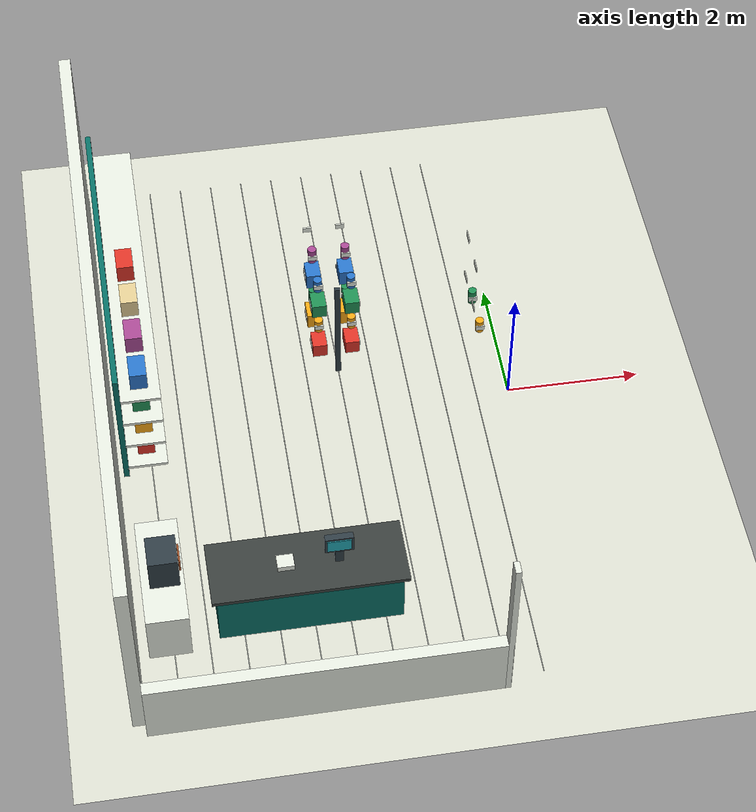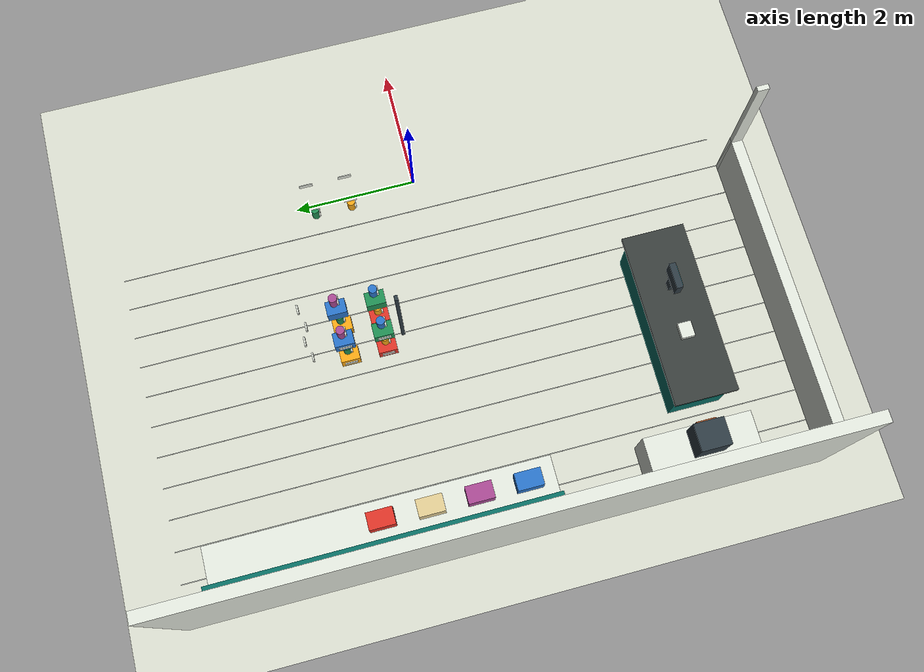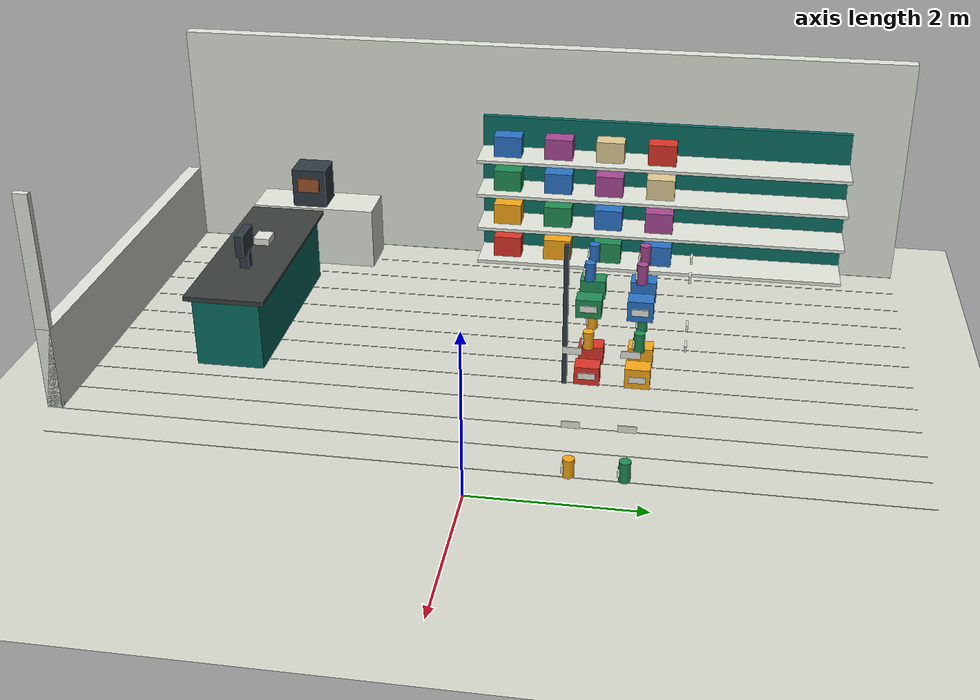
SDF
<sdf version="1.6">
 <world name="convenience_store">
  <model name="ground_plane">
   <static>true</static>
   <link name="ground_link">
    <collision name="ground_collision">
     <geometry><plane><normal>0 0 1</normal><size>100 100</size></plane></geometry>
     <surface><friction><ode><mu>1.0</mu><mu2>1.0</mu2></ode></friction></surface>
    </collision>
    <visual name="ground_visual">
     <geometry><plane><normal>0 0 1</normal><size>100 100</size></plane></geometry>
     <material><ambient>.84 .85 .80 1</ambient><diffuse>.84 .85 .80 1</diffuse></material>
    </visual>
   </link>
  </model>
  <model name="store_wall_west">
   <static>true</static>
   <pose>-6.09 0 1.55 0 0 0</pose>
   <link name="body">
    <collision name="body_collision">
     <geometry><box><size>0.18 10 3.1</size></box></geometry>
     <surface><friction><ode><mu>.8</mu><mu2>.8</mu2></ode></friction></surface>
    </collision>
    <visual name="body_visual">
     <geometry><box><size>0.18 10 3.1</size></box></geometry>
     <material><ambient>.88 .90 .86 1</ambient><diffuse>.88 .90 .86 1</diffuse></material>
    </visual>
   </link>
  </model>
  <model name="store_wall_front_left">
   <static>true</static>
   <pose>-3.5 -5.09 0.525 0 0 0</pose>
   <link name="body">
    <collision name="body_collision">
     <geometry><box><size>5 0.18 1.05</size></box></geometry>
     <surface><friction><ode><mu>.8</mu><mu2>.8</mu2></ode></friction></surface>
    </collision>
    <visual name="body_visual">
     <geometry><box><size>5 0.18 1.05</size></box></geometry>
     <material><ambient>.88 .90 .86 1</ambient><diffuse>.88 .90 .86 1</diffuse></material>
    </visual>
   </link>
  </model>
  <model name="store_wall_entry_post_left">
   <static>true</static>
   <pose>-1.04 -5.09 1.375 0 0 0</pose>
   <link name="body">
    <collision name="body_collision">
     <geometry><box><size>0.08 0.18 2.75</size></box></geometry>
     <surface><friction><ode><mu>.8</mu><mu2>.8</mu2></ode></friction></surface>
    </collision>
    <visual name="body_visual">
     <geometry><box><size>0.08 0.18 2.75</size></box></geometry>
     <material><ambient>.88 .90 .86 1</ambient><diffuse>.88 .90 .86 1</diffuse></material>
    </visual>
   </link>
  </model>
  <model name="tile_x_0">
   <static>true</static>
   <pose>-6.0 0 0.001 0 0 0</pose>
   <link name="body">
    <visual name="body_visual">
     <geometry><box><size>0.012 10 0.001</size></box></geometry>
     <material><ambient>.63 .65 .63 1</ambient><diffuse>.63 .65 .63 1</diffuse></material>
    </visual>
   </link>
  </model>
  <model name="tile_x_1">
   <static>true</static>
   <pose>-5.5 0 0.001 0 0 0</pose>
   <link name="body">
    <visual name="body_visual">
     <geometry><box><size>0.012 10 0.001</size></box></geometry>
     <material><ambient>.63 .65 .63 1</ambient><diffuse>.63 .65 .63 1</diffuse></material>
    </visual>
   </link>
  </model>
  <model name="tile_x_2">
   <static>true</static>
   <pose>-5.0 0 0.001 0 0 0</pose>
   <link name="body">
    <visual name="body_visual">
     <geometry><box><size>0.012 10 0.001</size></box></geometry>
     <material><ambient>.63 .65 .63 1</ambient><diffuse>.63 .65 .63 1</diffuse></material>
    </visual>
   </link>
  </model>
  <model name="tile_x_3">
   <static>true</static>
   <pose>-4.5 0 0.001 0 0 0</pose>
   <link name="body">
    <visual name="body_visual">
     <geometry><box><size>0.012 10 0.001</size></box></geometry>
     <material><ambient>.63 .65 .63 1</ambient><diffuse>.63 .65 .63 1</diffuse></material>
    </visual>
   </link>
  </model>
  <model name="tile_x_4">
   <static>true</static>
   <pose>-4.0 0 0.001 0 0 0</pose>
   <link name="body">
    <visual name="body_visual">
     <geometry><box><size>0.012 10 0.001</size></box></geometry>
     <material><ambient>.63 .65 .63 1</ambient><diffuse>.63 .65 .63 1</diffuse></material>
    </visual>
   </link>
  </model>
  <model name="tile_x_5">
   <static>true</static>
   <pose>-3.5 0 0.001 0 0 0</pose>
   <link name="body">
    <visual name="body_visual">
     <geometry><box><size>0.012 10 0.001</size></box></geometry>
     <material><ambient>.63 .65 .63 1</ambient><diffuse>.63 .65 .63 1</diffuse></material>
    </visual>
   </link>
  </model>
  <model name="tile_x_6">
   <static>true</static>
   <pose>-3.0 0 0.001 0 0 0</pose>
   <link name="body">
    <visual name="body_visual">
     <geometry><box><size>0.012 10 0.001</size></box></geometry>
     <material><ambient>.63 .65 .63 1</ambient><diffuse>.63 .65 .63 1</diffuse></material>
    </visual>
   </link>
  </model>
  <model name="tile_x_7">
   <static>true</static>
   <pose>-2.5 0 0.001 0 0 0</pose>
   <link name="body">
    <visual name="body_visual">
     <geometry><box><size>0.012 10 0.001</size></box></geometry>
     <material><ambient>.63 .65 .63 1</ambient><diffuse>.63 .65 .63 1</diffuse></material>
    </visual>
   </link>
  </model>
  <model name="tile_x_8">
   <static>true</static>
   <pose>-2.0 0 0.001 0 0 0</pose>
   <link name="body">
    <visual name="body_visual">
     <geometry><box><size>0.012 10 0.001</size></box></geometry>
     <material><ambient>.63 .65 .63 1</ambient><diffuse>.63 .65 .63 1</diffuse></material>
    </visual>
   </link>
  </model>
  <model name="tile_x_9">
   <static>true</static>
   <pose>-1.5 0 0.001 0 0 0</pose>
   <link name="body">
    <visual name="body_visual">
     <geometry><box><size>0.012 10 0.001</size></box></geometry>
     <material><ambient>.63 .65 .63 1</ambient><diffuse>.63 .65 .63 1</diffuse></material>
    </visual>
   </link>
  </model>
  <model name="tile_x_10">
   <static>true</static>
   <pose>-1.0 0 0.001 0 0 0</pose>
   <link name="body">
    <visual name="body_visual">
     <geometry><box><size>0.012 10 0.001</size></box></geometry>
     <material><ambient>.63 .65 .63 1</ambient><diffuse>.63 .65 .63 1</diffuse></material>
    </visual>
   </link>
  </model>
  <model name="tile_x_11">
   <static>true</static>
   <pose>-0.5 0 0.001 0 0 0</pose>
   <link name="body">
    <visual name="body_visual">
     <geometry><box><size>0.012 10 0.001</size></box></geometry>
     <material><ambient>.63 .65 .63 1</ambient><diffuse>.63 .65 .63 1</diffuse></material>
    </visual>
   </link>
  </model>
  <model name="gondola_0_end_0">
   <static>true</static>
   <pose>-2.5 0.7999999999999998 0.925 0 0 0</pose>
   <link name="body">
    <collision name="body_collision">
     <geometry><box><size>0.08 0.055 1.85</size></box></geometry>
     <surface><friction><ode><mu>.8</mu><mu2>.8</mu2></ode></friction></surface>
    </collision>
    <visual name="body_visual">
     <geometry><box><size>0.08 0.055 1.85</size></box></geometry>
     <material><ambient>.18 .23 .26 1</ambient><diffuse>.18 .23 .26 1</diffuse></material>
    </visual>
   </link>
  </model>
  <model name="gondola_0_goods_0_-1_0">
   <static>true</static>
   <pose>-2.75 1.0999999999999999 0.315 0 0 0</pose>
   <link name="body">
    <collision name="body_collision">
     <geometry><box><size>0.22 0.3 0.23</size></box></geometry>
     <surface><friction><ode><mu>.8</mu><mu2>.8</mu2></ode></friction></surface>
    </collision>
    <visual name="body_visual">
     <geometry><box><size>0.22 0.3 0.23</size></box></geometry>
     <material><ambient>.86 .20 .15 1</ambient><diffuse>.86 .20 .15 1</diffuse></material>
    </visual>
   </link>
  </model>
  <model name="gondola_0_goods_0_-1_0_label">
   <static>true</static>
   <pose>-2.866 1.0999999999999999 0.32 0 0 0</pose>
   <link name="body">
    <visual name="body_visual">
     <geometry><box><size>0.012 0.2 0.08</size></box></geometry>
     <material><ambient>.88 .90 .86 1</ambient><diffuse>.88 .90 .86 1</diffuse></material>
    </visual>
   </link>
  </model>
  <model name="gondola_0_goods_0_-1_1">
   <static>true</static>
   <pose>-2.75 1.6999999999999997 0.3275 0 0 0</pose>
   <link name="body">
    <collision name="body_collision">
     <geometry><box><size>0.22 0.3 0.255</size></box></geometry>
     <surface><friction><ode><mu>.8</mu><mu2>.8</mu2></ode></friction></surface>
    </collision>
    <visual name="body_visual">
     <geometry><box><size>0.22 0.3 0.255</size></box></geometry>
     <material><ambient>.96 .65 .08 1</ambient><diffuse>.96 .65 .08 1</diffuse></material>
    </visual>
   </link>
  </model>
  <model name="gondola_0_goods_0_-1_1_label">
   <static>true</static>
   <pose>-2.866 1.6999999999999997 0.32 0 0 0</pose>
   <link name="body">
    <visual name="body_visual">
     <geometry><box><size>0.012 0.2 0.08</size></box></geometry>
     <material><ambient>.88 .90 .86 1</ambient><diffuse>.88 .90 .86 1</diffuse></material>
    </visual>
   </link>
  </model>
  <model name="gondola_0_goods_0_1_0">
   <static>true</static>
   <pose>-2.25 1.0999999999999999 0.315 0 0 0</pose>
   <link name="body">
    <collision name="body_collision">
     <geometry><box><size>0.22 0.3 0.23</size></box></geometry>
     <surface><friction><ode><mu>.8</mu><mu2>.8</mu2></ode></friction></surface>
    </collision>
    <visual name="body_visual">
     <geometry><box><size>0.22 0.3 0.23</size></box></geometry>
     <material><ambient>.86 .20 .15 1</ambient><diffuse>.86 .20 .15 1</diffuse></material>
    </visual>
   </link>
  </model>
  <model name="gondola_0_goods_0_1_0_label">
   <static>true</static>
   <pose>-2.134 1.0999999999999999 0.32 0 0 0</pose>
   <link name="body">
    <visual name="body_visual">
     <geometry><box><size>0.012 0.2 0.08</size></box></geometry>
     <material><ambient>.88 .90 .86 1</ambient><diffuse>.88 .90 .86 1</diffuse></material>
    </visual>
   </link>
  </model>
  <model name="gondola_0_goods_0_1_1">
   <static>true</static>
   <pose>-2.25 1.6999999999999997 0.3275 0 0 0</pose>
   <link name="body">
    <collision name="body_collision">
     <geometry><box><size>0.22 0.3 0.255</size></box></geometry>
     <surface><friction><ode><mu>.8</mu><mu2>.8</mu2></ode></friction></surface>
    </collision>
    <visual name="body_visual">
     <geometry><box><size>0.22 0.3 0.255</size></box></geometry>
     <material><ambient>.96 .65 .08 1</ambient><diffuse>.96 .65 .08 1</diffuse></material>
    </visual>
   </link>
  </model>
  <model name="gondola_0_goods_0_1_1_label">
   <static>true</static>
   <pose>-2.134 1.6999999999999997 0.32 0 0 0</pose>
   <link name="body">
    <visual name="body_visual">
     <geometry><box><size>0.012 0.2 0.08</size></box></geometry>
     <material><ambient>.88 .90 .86 1</ambient><diffuse>.88 .90 .86 1</diffuse></material>
    </visual>
   </link>
  </model>
  <model name="gondola_0_goods_1_-1_0">
   <static>true</static>
   <pose>-2.75 1.0999999999999999 0.76 0 0 0</pose>
   <link name="body">
    <collision name="body_collision">
     <geometry><cylinder><length>0.22</length><radius>0.065</radius></cylinder></geometry>
     <surface><friction><ode><mu>.8</mu><mu2>.8</mu2></ode></friction></surface>
    </collision>
    <visual name="body_visual">
     <geometry><cylinder><length>0.22</length><radius>0.065</radius></cylinder></geometry>
     <material><ambient>.96 .65 .08 1</ambient><diffuse>.96 .65 .08 1</diffuse></material>
    </visual>
   </link>
  </model>
  <model name="gondola_0_goods_1_-1_0_label">
   <static>true</static>
   <pose>-2.75 1.0379999999999998 0.76 0 0 0</pose>
   <link name="body">
    <visual name="body_visual">
     <geometry><box><size>0.135 0.025 0.08</size></box></geometry>
     <material><ambient>.88 .90 .86 1</ambient><diffuse>.88 .90 .86 1</diffuse></material>
    </visual>
   </link>
  </model>
  <model name="gondola_0_goods_1_-1_1">
   <static>true</static>
   <pose>-2.75 1.6999999999999997 0.7725 0 0 0</pose>
   <link name="body">
    <collision name="body_collision">
     <geometry><cylinder><length>0.245</length><radius>0.065</radius></cylinder></geometry>
     <surface><friction><ode><mu>.8</mu><mu2>.8</mu2></ode></friction></surface>
    </collision>
    <visual name="body_visual">
     <geometry><cylinder><length>0.245</length><radius>0.065</radius></cylinder></geometry>
     <material><ambient>.12 .55 .32 1</ambient><diffuse>.12 .55 .32 1</diffuse></material>
    </visual>
   </link>
  </model>
  <model name="gondola_0_goods_1_-1_1_label">
   <static>true</static>
   <pose>-2.75 1.6379999999999997 0.76 0 0 0</pose>
   <link name="body">
    <visual name="body_visual">
     <geometry><box><size>0.135 0.025 0.08</size></box></geometry>
     <material><ambient>.88 .90 .86 1</ambient><diffuse>.88 .90 .86 1</diffuse></material>
    </visual>
   </link>
  </model>
  <model name="gondola_0_goods_1_-1_2_label">
   <static>true</static>
   <pose>-2.75 2.238 0.76 0 0 0</pose>
   <link name="body">
    <visual name="body_visual">
     <geometry><box><size>0.135 0.025 0.08</size></box></geometry>
     <material><ambient>.88 .90 .86 1</ambient><diffuse>.88 .90 .86 1</diffuse></material>
    </visual>
   </link>
  </model>
  <model name="gondola_0_goods_1_1_0">
   <static>true</static>
   <pose>-2.25 1.0999999999999999 0.76 0 0 0</pose>
   <link name="body">
    <collision name="body_collision">
     <geometry><cylinder><length>0.22</length><radius>0.065</radius></cylinder></geometry>
     <surface><friction><ode><mu>.8</mu><mu2>.8</mu2></ode></friction></surface>
    </collision>
    <visual name="body_visual">
     <geometry><cylinder><length>0.22</length><radius>0.065</radius></cylinder></geometry>
     <material><ambient>.96 .65 .08 1</ambient><diffuse>.96 .65 .08 1</diffuse></material>
    </visual>
   </link>
  </model>
  <model name="gondola_0_goods_1_1_0_label">
   <static>true</static>
   <pose>-2.25 1.0379999999999998 0.76 0 0 0</pose>
   <link name="body">
    <visual name="body_visual">
     <geometry><box><size>0.135 0.025 0.08</size></box></geometry>
     <material><ambient>.88 .90 .86 1</ambient><diffuse>.88 .90 .86 1</diffuse></material>
    </visual>
   </link>
  </model>
  <model name="gondola_0_goods_1_1_1">
   <static>true</static>
   <pose>-2.25 1.6999999999999997 0.7725 0 0 0</pose>
   <link name="body">
    <collision name="body_collision">
     <geometry><cylinder><length>0.245</length><radius>0.065</radius></cylinder></geometry>
     <surface><friction><ode><mu>.8</mu><mu2>.8</mu2></ode></friction></surface>
    </collision>
    <visual name="body_visual">
     <geometry><cylinder><length>0.245</length><radius>0.065</radius></cylinder></geometry>
     <material><ambient>.12 .55 .32 1</ambient><diffuse>.12 .55 .32 1</diffuse></material>
    </visual>
   </link>
  </model>
  <model name="gondola_0_goods_1_1_1_label">
   <static>true</static>
   <pose>-2.25 1.6379999999999997 0.76 0 0 0</pose>
   <link name="body">
    <visual name="body_visual">
     <geometry><box><size>0.135 0.025 0.08</size></box></geometry>
     <material><ambient>.88 .90 .86 1</ambient><diffuse>.88 .90 .86 1</diffuse></material>
    </visual>
   </link>
  </model>
  <model name="gondola_0_goods_1_1_2_label">
   <static>true</static>
   <pose>-2.25 2.238 0.76 0 0 0</pose>
   <link name="body">
    <visual name="body_visual">
     <geometry><box><size>0.135 0.025 0.08</size></box></geometry>
     <material><ambient>.88 .90 .86 1</ambient><diffuse>.88 .90 .86 1</diffuse></material>
    </visual>
   </link>
  </model>
  <model name="gondola_0_goods_2_-1_0">
   <static>true</static>
   <pose>-2.75 1.0999999999999999 1.215 0 0 0</pose>
   <link name="body">
    <collision name="body_collision">
     <geometry><box><size>0.22 0.3 0.23</size></box></geometry>
     <surface><friction><ode><mu>.8</mu><mu2>.8</mu2></ode></friction></surface>
    </collision>
    <visual name="body_visual">
     <geometry><box><size>0.22 0.3 0.23</size></box></geometry>
     <material><ambient>.12 .55 .32 1</ambient><diffuse>.12 .55 .32 1</diffuse></material>
    </visual>
   </link>
  </model>
  <model name="gondola_0_goods_2_-1_0_label">
   <static>true</static>
   <pose>-2.866 1.0999999999999999 1.2200000000000002 0 0 0</pose>
   <link name="body">
    <visual name="body_visual">
     <geometry><box><size>0.012 0.2 0.08</size></box></geometry>
     <material><ambient>.88 .90 .86 1</ambient><diffuse>.88 .90 .86 1</diffuse></material>
    </visual>
   </link>
  </model>
  <model name="gondola_0_goods_2_-1_1">
   <static>true</static>
   <pose>-2.75 1.6999999999999997 1.2275 0 0 0</pose>
   <link name="body">
    <collision name="body_collision">
     <geometry><box><size>0.22 0.3 0.255</size></box></geometry>
     <surface><friction><ode><mu>.8</mu><mu2>.8</mu2></ode></friction></surface>
    </collision>
    <visual name="body_visual">
     <geometry><box><size>0.22 0.3 0.255</size></box></geometry>
     <material><ambient>.16 .45 .78 1</ambient><diffuse>.16 .45 .78 1</diffuse></material>
    </visual>
   </link>
  </model>
  <model name="gondola_0_goods_2_-1_1_label">
   <static>true</static>
   <pose>-2.866 1.6999999999999997 1.2200000000000002 0 0 0</pose>
   <link name="body">
    <visual name="body_visual">
     <geometry><box><size>0.012 0.2 0.08</size></box></geometry>
     <material><ambient>.88 .90 .86 1</ambient><diffuse>.88 .90 .86 1</diffuse></material>
    </visual>
   </link>
  </model>
  <model name="gondola_0_goods_2_1_0">
   <static>true</static>
   <pose>-2.25 1.0999999999999999 1.215 0 0 0</pose>
   <link name="body">
    <collision name="body_collision">
     <geometry><box><size>0.22 0.3 0.23</size></box></geometry>
     <surface><friction><ode><mu>.8</mu><mu2>.8</mu2></ode></friction></surface>
    </collision>
    <visual name="body_visual">
     <geometry><box><size>0.22 0.3 0.23</size></box></geometry>
     <material><ambient>.12 .55 .32 1</ambient><diffuse>.12 .55 .32 1</diffuse></material>
    </visual>
   </link>
  </model>
  <model name="gondola_0_goods_2_1_0_label">
   <static>true</static>
   <pose>-2.134 1.0999999999999999 1.2200000000000002 0 0 0</pose>
   <link name="body">
    <visual name="body_visual">
     <geometry><box><size>0.012 0.2 0.08</size></box></geometry>
     <material><ambient>.88 .90 .86 1</ambient><diffuse>.88 .90 .86 1</diffuse></material>
    </visual>
   </link>
  </model>
  <model name="gondola_0_goods_2_1_1">
   <static>true</static>
   <pose>-2.25 1.6999999999999997 1.2275 0 0 0</pose>
   <link name="body">
    <collision name="body_collision">
     <geometry><box><size>0.22 0.3 0.255</size></box></geometry>
     <surface><friction><ode><mu>.8</mu><mu2>.8</mu2></ode></friction></surface>
    </collision>
    <visual name="body_visual">
     <geometry><box><size>0.22 0.3 0.255</size></box></geometry>
     <material><ambient>.16 .45 .78 1</ambient><diffuse>.16 .45 .78 1</diffuse></material>
    </visual>
   </link>
  </model>
  <model name="gondola_0_goods_2_1_1_label">
   <static>true</static>
   <pose>-2.134 1.6999999999999997 1.2200000000000002 0 0 0</pose>
   <link name="body">
    <visual name="body_visual">
     <geometry><box><size>0.012 0.2 0.08</size></box></geometry>
     <material><ambient>.88 .90 .86 1</ambient><diffuse>.88 .90 .86 1</diffuse></material>
    </visual>
   </link>
  </model>
  <model name="gondola_0_goods_3_-1_0">
   <static>true</static>
   <pose>-2.75 1.0999999999999999 1.6600000000000001 0 0 0</pose>
   <link name="body">
    <collision name="body_collision">
     <geometry><cylinder><length>0.22</length><radius>0.065</radius></cylinder></geometry>
     <surface><friction><ode><mu>.8</mu><mu2>.8</mu2></ode></friction></surface>
    </collision>
    <visual name="body_visual">
     <geometry><cylinder><length>0.22</length><radius>0.065</radius></cylinder></geometry>
     <material><ambient>.16 .45 .78 1</ambient><diffuse>.16 .45 .78 1</diffuse></material>
    </visual>
   </link>
  </model>
  <model name="gondola_0_goods_3_-1_0_label">
   <static>true</static>
   <pose>-2.75 1.0379999999999998 1.6600000000000001 0 0 0</pose>
   <link name="body">
    <visual name="body_visual">
     <geometry><box><size>0.135 0.025 0.08</size></box></geometry>
     <material><ambient>.88 .90 .86 1</ambient><diffuse>.88 .90 .86 1</diffuse></material>
    </visual>
   </link>
  </model>
  <model name="gondola_0_goods_3_-1_1">
   <static>true</static>
   <pose>-2.75 1.6999999999999997 1.6725 0 0 0</pose>
   <link name="body">
    <collision name="body_collision">
     <geometry><cylinder><length>0.245</length><radius>0.065</radius></cylinder></geometry>
     <surface><friction><ode><mu>.8</mu><mu2>.8</mu2></ode></friction></surface>
    </collision>
    <visual name="body_visual">
     <geometry><cylinder><length>0.245</length><radius>0.065</radius></cylinder></geometry>
     <material><ambient>.65 .28 .57 1</ambient><diffuse>.65 .28 .57 1</diffuse></material>
    </visual>
   </link>
  </model>
  <model name="gondola_0_goods_3_-1_1_label">
   <static>true</static>
   <pose>-2.75 1.6379999999999997 1.6600000000000001 0 0 0</pose>
   <link name="body">
    <visual name="body_visual">
     <geometry><box><size>0.135 0.025 0.08</size></box></geometry>
     <material><ambient>.88 .90 .86 1</ambient><diffuse>.88 .90 .86 1</diffuse></material>
    </visual>
   </link>
  </model>
  <model name="gondola_0_goods_3_-1_2_label">
   <static>true</static>
   <pose>-2.75 2.238 1.6600000000000001 0 0 0</pose>
   <link name="body">
    <visual name="body_visual">
     <geometry><box><size>0.135 0.025 0.08</size></box></geometry>
     <material><ambient>.88 .90 .86 1</ambient><diffuse>.88 .90 .86 1</diffuse></material>
    </visual>
   </link>
  </model>
  <model name="gondola_0_goods_3_1_0">
   <static>true</static>
   <pose>-2.25 1.0999999999999999 1.6600000000000001 0 0 0</pose>
   <link name="body">
    <collision name="body_collision">
     <geometry><cylinder><length>0.22</length><radius>0.065</radius></cylinder></geometry>
     <surface><friction><ode><mu>.8</mu><mu2>.8</mu2></ode></friction></surface>
    </collision>
    <visual name="body_visual">
     <geometry><cylinder><length>0.22</length><radius>0.065</radius></cylinder></geometry>
     <material><ambient>.16 .45 .78 1</ambient><diffuse>.16 .45 .78 1</diffuse></material>
    </visual>
   </link>
  </model>
  <model name="gondola_0_goods_3_1_0_label">
   <static>true</static>
   <pose>-2.25 1.0379999999999998 1.6600000000000001 0 0 0</pose>
   <link name="body">
    <visual name="body_visual">
     <geometry><box><size>0.135 0.025 0.08</size></box></geometry>
     <material><ambient>.88 .90 .86 1</ambient><diffuse>.88 .90 .86 1</diffuse></material>
    </visual>
   </link>
  </model>
  <model name="gondola_0_goods_3_1_1">
   <static>true</static>
   <pose>-2.25 1.6999999999999997 1.6725 0 0 0</pose>
   <link name="body">
    <collision name="body_collision">
     <geometry><cylinder><length>0.245</length><radius>0.065</radius></cylinder></geometry>
     <surface><friction><ode><mu>.8</mu><mu2>.8</mu2></ode></friction></surface>
    </collision>
    <visual name="body_visual">
     <geometry><cylinder><length>0.245</length><radius>0.065</radius></cylinder></geometry>
     <material><ambient>.65 .28 .57 1</ambient><diffuse>.65 .28 .57 1</diffuse></material>
    </visual>
   </link>
  </model>
  <model name="gondola_0_goods_3_1_1_label">
   <static>true</static>
   <pose>-2.25 1.6379999999999997 1.6600000000000001 0 0 0</pose>
   <link name="body">
    <visual name="body_visual">
     <geometry><box><size>0.135 0.025 0.08</size></box></geometry>
     <material><ambient>.88 .90 .86 1</ambient><diffuse>.88 .90 .86 1</diffuse></material>
    </visual>
   </link>
  </model>
  <model name="gondola_0_goods_3_1_2_label">
   <static>true</static>
   <pose>-2.25 2.238 1.6600000000000001 0 0 0</pose>
   <link name="body">
    <visual name="body_visual">
     <geometry><box><size>0.135 0.025 0.08</size></box></geometry>
     <material><ambient>.88 .90 .86 1</ambient><diffuse>.88 .90 .86 1</diffuse></material>
    </visual>
   </link>
  </model>
  <model name="gondola_1_goods_0_-1_0">
   <static>true</static>
   <pose>-0.25 1.0999999999999999 0.31 0 0 0</pose>
   <link name="body">
    <collision name="body_collision">
     <geometry><cylinder><length>0.22</length><radius>0.065</radius></cylinder></geometry>
     <surface><friction><ode><mu>.8</mu><mu2>.8</mu2></ode></friction></surface>
    </collision>
    <visual name="body_visual">
     <geometry><cylinder><length>0.22</length><radius>0.065</radius></cylinder></geometry>
     <material><ambient>.96 .65 .08 1</ambient><diffuse>.96 .65 .08 1</diffuse></material>
    </visual>
   </link>
  </model>
  <model name="gondola_1_goods_0_-1_0_label">
   <static>true</static>
   <pose>-0.25 1.0379999999999998 0.31 0 0 0</pose>
   <link name="body">
    <visual name="body_visual">
     <geometry><box><size>0.135 0.025 0.08</size></box></geometry>
     <material><ambient>.88 .90 .86 1</ambient><diffuse>.88 .90 .86 1</diffuse></material>
    </visual>
   </link>
  </model>
  <model name="gondola_1_goods_0_-1_1">
   <static>true</static>
   <pose>-0.25 1.6999999999999997 0.3225 0 0 0</pose>
   <link name="body">
    <collision name="body_collision">
     <geometry><cylinder><length>0.245</length><radius>0.065</radius></cylinder></geometry>
     <surface><friction><ode><mu>.8</mu><mu2>.8</mu2></ode></friction></surface>
    </collision>
    <visual name="body_visual">
     <geometry><cylinder><length>0.245</length><radius>0.065</radius></cylinder></geometry>
     <material><ambient>.12 .55 .32 1</ambient><diffuse>.12 .55 .32 1</diffuse></material>
    </visual>
   </link>
  </model>
  <model name="gondola_1_goods_0_-1_1_label">
   <static>true</static>
   <pose>-0.25 1.6379999999999997 0.31 0 0 0</pose>
   <link name="body">
    <visual name="body_visual">
     <geometry><box><size>0.135 0.025 0.08</size></box></geometry>
     <material><ambient>.88 .90 .86 1</ambient><diffuse>.88 .90 .86 1</diffuse></material>
    </visual>
   </link>
  </model>
  <model name="gondola_1_goods_1_-1_0_label">
   <static>true</static>
   <pose>-0.366 1.0999999999999999 0.77 0 0 0</pose>
   <link name="body">
    <visual name="body_visual">
     <geometry><box><size>0.012 0.2 0.08</size></box></geometry>
     <material><ambient>.88 .90 .86 1</ambient><diffuse>.88 .90 .86 1</diffuse></material>
    </visual>
   </link>
  </model>
  <model name="gondola_1_goods_1_-1_1_label">
   <static>true</static>
   <pose>-0.366 1.6999999999999997 0.77 0 0 0</pose>
   <link name="body">
    <visual name="body_visual">
     <geometry><box><size>0.012 0.2 0.08</size></box></geometry>
     <material><ambient>.88 .90 .86 1</ambient><diffuse>.88 .90 .86 1</diffuse></material>
    </visual>
   </link>
  </model>
  <model name="gondola_1_goods_3_-1_0_label">
   <static>true</static>
   <pose>-0.366 1.0999999999999999 1.67 0 0 0</pose>
   <link name="body">
    <visual name="body_visual">
     <geometry><box><size>0.012 0.2 0.08</size></box></geometry>
     <material><ambient>.88 .90 .86 1</ambient><diffuse>.88 .90 .86 1</diffuse></material>
    </visual>
   </link>
  </model>
  <model name="gondola_1_goods_3_-1_1_label">
   <static>true</static>
   <pose>-0.366 1.6999999999999997 1.67 0 0 0</pose>
   <link name="body">
    <visual name="body_visual">
     <geometry><box><size>0.012 0.2 0.08</size></box></geometry>
     <material><ambient>.88 .90 .86 1</ambient><diffuse>.88 .90 .86 1</diffuse></material>
    </visual>
   </link>
  </model>
  <model name="wall_shelf_back">
   <static>true</static>
   <pose>-5.88 1.75 1.075 0 0 0</pose>
   <link name="body">
    <collision name="body_collision">
     <geometry><box><size>0.08 5.0 2.15</size></box></geometry>
     <surface><friction><ode><mu>.8</mu><mu2>.8</mu2></ode></friction></surface>
    </collision>
    <visual name="body_visual">
     <geometry><box><size>0.08 5.0 2.15</size></box></geometry>
     <material><ambient>.03 .43 .39 1</ambient><diffuse>.03 .43 .39 1</diffuse></material>
    </visual>
   </link>
  </model>
  <model name="wall_shelf_0">
   <static>true</static>
   <pose>-5.56 1.75 0.1975 0 0 0</pose>
   <link name="body">
    <collision name="body_collision">
     <geometry><box><size>0.6 5 0.045</size></box></geometry>
     <surface><friction><ode><mu>.8</mu><mu2>.8</mu2></ode></friction></surface>
    </collision>
    <visual name="body_visual">
     <geometry><box><size>0.6 5 0.045</size></box></geometry>
     <material><ambient>.88 .90 .86 1</ambient><diffuse>.88 .90 .86 1</diffuse></material>
    </visual>
   </link>
  </model>
  <model name="wall_goods_0_0">
   <static>true</static>
   <pose>-5.55 -0.35 0.365 0 0 0</pose>
   <link name="body">
    <collision name="body_collision">
     <geometry><box><size>0.25 0.38 0.29</size></box></geometry>
     <surface><friction><ode><mu>.8</mu><mu2>.8</mu2></ode></friction></surface>
    </collision>
    <visual name="body_visual">
     <geometry><box><size>0.25 0.38 0.29</size></box></geometry>
     <material><ambient>.86 .20 .15 1</ambient><diffuse>.86 .20 .15 1</diffuse></material>
    </visual>
   </link>
  </model>
  <model name="wall_goods_0_1">
   <static>true</static>
   <pose>-5.55 0.35 0.365 0 0 0</pose>
   <link name="body">
    <collision name="body_collision">
     <geometry><box><size>0.25 0.38 0.29</size></box></geometry>
     <surface><friction><ode><mu>.8</mu><mu2>.8</mu2></ode></friction></surface>
    </collision>
    <visual name="body_visual">
     <geometry><box><size>0.25 0.38 0.29</size></box></geometry>
     <material><ambient>.96 .65 .08 1</ambient><diffuse>.96 .65 .08 1</diffuse></material>
    </visual>
   </link>
  </model>
  <model name="wall_goods_0_2">
   <static>true</static>
   <pose>-5.55 1.0499999999999998 0.365 0 0 0</pose>
   <link name="body">
    <collision name="body_collision">
     <geometry><box><size>0.25 0.38 0.29</size></box></geometry>
     <surface><friction><ode><mu>.8</mu><mu2>.8</mu2></ode></friction></surface>
    </collision>
    <visual name="body_visual">
     <geometry><box><size>0.25 0.38 0.29</size></box></geometry>
     <material><ambient>.12 .55 .32 1</ambient><diffuse>.12 .55 .32 1</diffuse></material>
    </visual>
   </link>
  </model>
  <model name="wall_goods_0_3">
   <static>true</static>
   <pose>-5.55 1.7499999999999996 0.365 0 0 0</pose>
   <link name="body">
    <collision name="body_collision">
     <geometry><box><size>0.25 0.38 0.29</size></box></geometry>
     <surface><friction><ode><mu>.8</mu><mu2>.8</mu2></ode></friction></surface>
    </collision>
    <visual name="body_visual">
     <geometry><box><size>0.25 0.38 0.29</size></box></geometry>
     <material><ambient>.16 .45 .78 1</ambient><diffuse>.16 .45 .78 1</diffuse></material>
    </visual>
   </link>
  </model>
  <model name="wall_shelf_1">
   <static>true</static>
   <pose>-5.56 1.75 0.6975 0 0 0</pose>
   <link name="body">
    <collision name="body_collision">
     <geometry><box><size>0.6 5 0.045</size></box></geometry>
     <surface><friction><ode><mu>.8</mu><mu2>.8</mu2></ode></friction></surface>
    </collision>
    <visual name="body_visual">
     <geometry><box><size>0.6 5 0.045</size></box></geometry>
     <material><ambient>.88 .90 .86 1</ambient><diffuse>.88 .90 .86 1</diffuse></material>
    </visual>
   </link>
  </model>
  <model name="wall_goods_1_0">
   <static>true</static>
   <pose>-5.55 -0.35 0.865 0 0 0</pose>
   <link name="body">
    <collision name="body_collision">
     <geometry><box><size>0.25 0.38 0.29</size></box></geometry>
     <surface><friction><ode><mu>.8</mu><mu2>.8</mu2></ode></friction></surface>
    </collision>
    <visual name="body_visual">
     <geometry><box><size>0.25 0.38 0.29</size></box></geometry>
     <material><ambient>.96 .65 .08 1</ambient><diffuse>.96 .65 .08 1</diffuse></material>
    </visual>
   </link>
  </model>
  <model name="wall_goods_1_1">
   <static>true</static>
   <pose>-5.55 0.35 0.865 0 0 0</pose>
   <link name="body">
    <collision name="body_collision">
     <geometry><box><size>0.25 0.38 0.29</size></box></geometry>
     <surface><friction><ode><mu>.8</mu><mu2>.8</mu2></ode></friction></surface>
    </collision>
    <visual name="body_visual">
     <geometry><box><size>0.25 0.38 0.29</size></box></geometry>
     <material><ambient>.12 .55 .32 1</ambient><diffuse>.12 .55 .32 1</diffuse></material>
    </visual>
   </link>
  </model>
  <model name="wall_goods_1_2">
   <static>true</static>
   <pose>-5.55 1.0499999999999998 0.865 0 0 0</pose>
   <link name="body">
    <collision name="body_collision">
     <geometry><box><size>0.25 0.38 0.29</size></box></geometry>
     <surface><friction><ode><mu>.8</mu><mu2>.8</mu2></ode></friction></surface>
    </collision>
    <visual name="body_visual">
     <geometry><box><size>0.25 0.38 0.29</size></box></geometry>
     <material><ambient>.16 .45 .78 1</ambient><diffuse>.16 .45 .78 1</diffuse></material>
    </visual>
   </link>
  </model>
  <model name="wall_goods_1_3">
   <static>true</static>
   <pose>-5.55 1.7499999999999996 0.865 0 0 0</pose>
   <link name="body">
    <collision name="body_collision">
     <geometry><box><size>0.25 0.38 0.29</size></box></geometry>
     <surface><friction><ode><mu>.8</mu><mu2>.8</mu2></ode></friction></surface>
    </collision>
    <visual name="body_visual">
     <geometry><box><size>0.25 0.38 0.29</size></box></geometry>
     <material><ambient>.65 .28 .57 1</ambient><diffuse>.65 .28 .57 1</diffuse></material>
    </visual>
   </link>
  </model>
  <model name="wall_shelf_2">
   <static>true</static>
   <pose>-5.56 1.75 1.1975 0 0 0</pose>
   <link name="body">
    <collision name="body_collision">
     <geometry><box><size>0.6 5 0.045</size></box></geometry>
     <surface><friction><ode><mu>.8</mu><mu2>.8</mu2></ode></friction></surface>
    </collision>
    <visual name="body_visual">
     <geometry><box><size>0.6 5 0.045</size></box></geometry>
     <material><ambient>.88 .90 .86 1</ambient><diffuse>.88 .90 .86 1</diffuse></material>
    </visual>
   </link>
  </model>
  <model name="wall_goods_2_0">
   <static>true</static>
   <pose>-5.55 -0.35 1.365 0 0 0</pose>
   <link name="body">
    <collision name="body_collision">
     <geometry><box><size>0.25 0.38 0.29</size></box></geometry>
     <surface><friction><ode><mu>.8</mu><mu2>.8</mu2></ode></friction></surface>
    </collision>
    <visual name="body_visual">
     <geometry><box><size>0.25 0.38 0.29</size></box></geometry>
     <material><ambient>.12 .55 .32 1</ambient><diffuse>.12 .55 .32 1</diffuse></material>
    </visual>
   </link>
  </model>
  <model name="wall_goods_2_1">
   <static>true</static>
   <pose>-5.55 0.35 1.365 0 0 0</pose>
   <link name="body">
    <collision name="body_collision">
     <geometry><box><size>0.25 0.38 0.29</size></box></geometry>
     <surface><friction><ode><mu>.8</mu><mu2>.8</mu2></ode></friction></surface>
    </collision>
    <visual name="body_visual">
     <geometry><box><size>0.25 0.38 0.29</size></box></geometry>
     <material><ambient>.16 .45 .78 1</ambient><diffuse>.16 .45 .78 1</diffuse></material>
    </visual>
   </link>
  </model>
  <model name="wall_goods_2_2">
   <static>true</static>
   <pose>-5.55 1.0499999999999998 1.365 0 0 0</pose>
   <link name="body">
    <collision name="body_collision">
     <geometry><box><size>0.25 0.38 0.29</size></box></geometry>
     <surface><friction><ode><mu>.8</mu><mu2>.8</mu2></ode></friction></surface>
    </collision>
    <visual name="body_visual">
     <geometry><box><size>0.25 0.38 0.29</size></box></geometry>
     <material><ambient>.65 .28 .57 1</ambient><diffuse>.65 .28 .57 1</diffuse></material>
    </visual>
   </link>
  </model>
  <model name="wall_goods_2_3">
   <static>true</static>
   <pose>-5.55 1.7499999999999996 1.365 0 0 0</pose>
   <link name="body">
    <collision name="body_collision">
     <geometry><box><size>0.25 0.38 0.29</size></box></geometry>
     <surface><friction><ode><mu>.8</mu><mu2>.8</mu2></ode></friction></surface>
    </collision>
    <visual name="body_visual">
     <geometry><box><size>0.25 0.38 0.29</size></box></geometry>
     <material><ambient>.87 .79 .57 1</ambient><diffuse>.87 .79 .57 1</diffuse></material>
    </visual>
   </link>
  </model>
  <model name="wall_shelf_3">
   <static>true</static>
   <pose>-5.56 1.75 1.6975 0 0 0</pose>
   <link name="body">
    <collision name="body_collision">
     <geometry><box><size>0.6 5 0.045</size></box></geometry>
     <surface><friction><ode><mu>.8</mu><mu2>.8</mu2></ode></friction></surface>
    </collision>
    <visual name="body_visual">
     <geometry><box><size>0.6 5 0.045</size></box></geometry>
     <material><ambient>.88 .90 .86 1</ambient><diffuse>.88 .90 .86 1</diffuse></material>
    </visual>
   </link>
  </model>
  <model name="wall_goods_3_0">
   <static>true</static>
   <pose>-5.55 -0.35 1.865 0 0 0</pose>
   <link name="body">
    <collision name="body_collision">
     <geometry><box><size>0.25 0.38 0.29</size></box></geometry>
     <surface><friction><ode><mu>.8</mu><mu2>.8</mu2></ode></friction></surface>
    </collision>
    <visual name="body_visual">
     <geometry><box><size>0.25 0.38 0.29</size></box></geometry>
     <material><ambient>.16 .45 .78 1</ambient><diffuse>.16 .45 .78 1</diffuse></material>
    </visual>
   </link>
  </model>
  <model name="wall_goods_3_1">
   <static>true</static>
   <pose>-5.55 0.35 1.865 0 0 0</pose>
   <link name="body">
    <collision name="body_collision">
     <geometry><box><size>0.25 0.38 0.29</size></box></geometry>
     <surface><friction><ode><mu>.8</mu><mu2>.8</mu2></ode></friction></surface>
    </collision>
    <visual name="body_visual">
     <geometry><box><size>0.25 0.38 0.29</size></box></geometry>
     <material><ambient>.65 .28 .57 1</ambient><diffuse>.65 .28 .57 1</diffuse></material>
    </visual>
   </link>
  </model>
  <model name="wall_goods_3_2">
   <static>true</static>
   <pose>-5.55 1.0499999999999998 1.865 0 0 0</pose>
   <link name="body">
    <collision name="body_collision">
     <geometry><box><size>0.25 0.38 0.29</size></box></geometry>
     <surface><friction><ode><mu>.8</mu><mu2>.8</mu2></ode></friction></surface>
    </collision>
    <visual name="body_visual">
     <geometry><box><size>0.25 0.38 0.29</size></box></geometry>
     <material><ambient>.87 .79 .57 1</ambient><diffuse>.87 .79 .57 1</diffuse></material>
    </visual>
   </link>
  </model>
  <model name="wall_goods_3_3">
   <static>true</static>
   <pose>-5.55 1.7499999999999996 1.865 0 0 0</pose>
   <link name="body">
    <collision name="body_collision">
     <geometry><box><size>0.25 0.38 0.29</size></box></geometry>
     <surface><friction><ode><mu>.8</mu><mu2>.8</mu2></ode></friction></surface>
    </collision>
    <visual name="body_visual">
     <geometry><box><size>0.25 0.38 0.29</size></box></geometry>
     <material><ambient>.86 .20 .15 1</ambient><diffuse>.86 .20 .15 1</diffuse></material>
    </visual>
   </link>
  </model>
  <model name="checkout_base">
   <static>true</static>
   <pose>-3.55 -3.35 0.455 0 0 0</pose>
   <link name="body">
    <collision name="body_collision">
     <geometry><box><size>2.6 0.85 0.91</size></box></geometry>
     <surface><friction><ode><mu>.8</mu><mu2>.8</mu2></ode></friction></surface>
    </collision>
    <visual name="body_visual">
     <geometry><box><size>2.6 0.85 0.91</size></box></geometry>
     <material><ambient>.03 .43 .39 1</ambient><diffuse>.03 .43 .39 1</diffuse></material>
    </visual>
   </link>
  </model>
  <model name="checkout_top">
   <static>true</static>
   <pose>-3.55 -3.35 0.94 0 0 0</pose>
   <link name="body">
    <collision name="body_collision">
     <geometry><box><size>2.75 1.0 0.06</size></box></geometry>
     <surface><friction><ode><mu>.8</mu><mu2>.8</mu2></ode></friction></surface>
    </collision>
    <visual name="body_visual">
     <geometry><box><size>2.75 1.0 0.06</size></box></geometry>
     <material><ambient>.22 .24 .23 1</ambient><diffuse>.22 .24 .23 1</diffuse></material>
    </visual>
   </link>
  </model>
  <model name="register_stand">
   <static>true</static>
   <pose>-3.1 -3.35 1.085 0 0 0</pose>
   <link name="body">
    <collision name="body_collision">
     <geometry><box><size>0.12 0.12 0.23</size></box></geometry>
     <surface><friction><ode><mu>.8</mu><mu2>.8</mu2></ode></friction></surface>
    </collision>
    <visual name="body_visual">
     <geometry><box><size>0.12 0.12 0.23</size></box></geometry>
     <material><ambient>.18 .23 .26 1</ambient><diffuse>.18 .23 .26 1</diffuse></material>
    </visual>
   </link>
  </model>
  <model name="register_display">
   <static>true</static>
   <pose>-3.1 -3.35 1.33 0 0 0</pose>
   <link name="body">
    <collision name="body_collision">
     <geometry><box><size>0.4 0.1 0.28</size></box></geometry>
     <surface><friction><ode><mu>.8</mu><mu2>.8</mu2></ode></friction></surface>
    </collision>
    <visual name="body_visual">
     <geometry><box><size>0.4 0.1 0.28</size></box></geometry>
     <material><ambient>.18 .23 .26 1</ambient><diffuse>.18 .23 .26 1</diffuse></material>
    </visual>
   </link>
  </model>
  <model name="register_screen">
   <static>true</static>
   <pose>-3.1 -3.407 1.33 0 0 0</pose>
   <link name="body">
    <visual name="body_visual">
     <geometry><box><size>0.34 0.012 0.21</size></box></geometry>
     <material><ambient>.13 .65 .70 1</ambient><diffuse>.13 .65 .70 1</diffuse></material>
    </visual>
   </link>
  </model>
  <model name="checkout_scanner">
   <static>true</static>
   <pose>-3.85 -3.35 1.015 0 0 0</pose>
   <link name="body">
    <collision name="body_collision">
     <geometry><box><size>0.24 0.21 0.09</size></box></geometry>
     <surface><friction><ode><mu>.8</mu><mu2>.8</mu2></ode></friction></surface>
    </collision>
    <visual name="body_visual">
     <geometry><box><size>0.24 0.21 0.09</size></box></geometry>
     <material><ambient>.88 .90 .86 1</ambient><diffuse>.88 .90 .86 1</diffuse></material>
    </visual>
   </link>
  </model>
  <model name="back_counter">
   <static>true</static>
   <pose>-5.55 -3.1 0.425 0 0 0</pose>
   <link name="body">
    <collision name="body_collision">
     <geometry><box><size>0.6 1.7 0.85</size></box></geometry>
     <surface><friction><ode><mu>.8</mu><mu2>.8</mu2></ode></friction></surface>
    </collision>
    <visual name="body_visual">
     <geometry><box><size>0.6 1.7 0.85</size></box></geometry>
     <material><ambient>.88 .90 .86 1</ambient><diffuse>.88 .90 .86 1</diffuse></material>
    </visual>
   </link>
  </model>
  <model name="coffee_machine">
   <static>true</static>
   <pose>-5.52 -3.15 1.12 0 0 0</pose>
   <link name="body">
    <collision name="body_collision">
     <geometry><box><size>0.42 0.47 0.54</size></box></geometry>
     <surface><friction><ode><mu>.8</mu><mu2>.8</mu2></ode></friction></surface>
    </collision>
    <visual name="body_visual">
     <geometry><box><size>0.42 0.47 0.54</size></box></geometry>
     <material><ambient>.18 .23 .26 1</ambient><diffuse>.18 .23 .26 1</diffuse></material>
    </visual>
   </link>
  </model>
  <model name="coffee_panel">
   <static>true</static>
   <pose>-5.29 -3.15 1.18 0 0 0</pose>
   <link name="body">
    <visual name="body_visual">
     <geometry><box><size>0.025 0.3 0.2</size></box></geometry>
     <material><ambient>.62 .32 .16 1</ambient><diffuse>.62 .32 .16 1</diffuse></material>
    </visual>
   </link>
  </model>
 </world>
</sdf>
